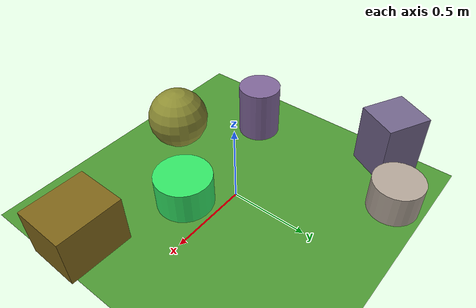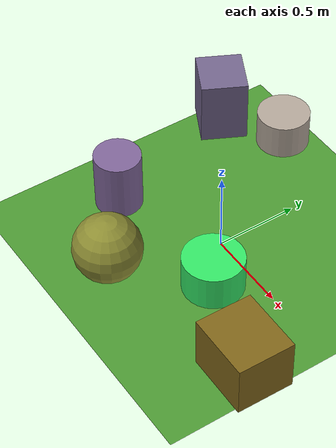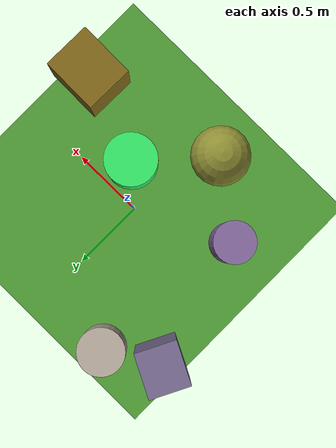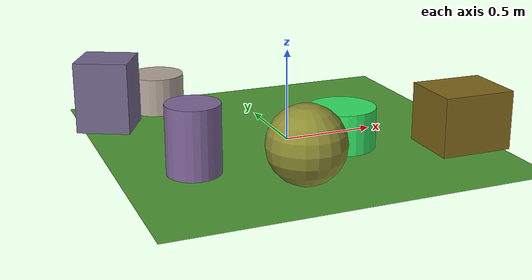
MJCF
<mujoco>
   <asset>
<texture type="skybox" builtin="gradient" rgb1="0.5 0.6 0.5" rgb2="0.9 1.0 0.3" width="500" height="500"/>
<texture name="gradient_0" builtin="gradient" rgb1="0.6 0.5 0.3" rgb2="0.5 0.6 0.1" width="500" height="500"/>
<texture name="checker_1" builtin="checker" rgb1="0.7 0.7 0.2" rgb2="0.2 0.1 0.9" width="500" height="500"/>
<texture name="flat_2" builtin="flat" rgb1="0.5 0.4 0.1" rgb2="0.5 0.4 0.1"  width="500" height="500"/>
<texture name="flat_3" builtin="flat" rgb1="0.2 0.9 0.4" rgb2="0.2 0.9 0.4"  width="500" height="500"/>
<texture name="gradient_4" builtin="gradient" rgb1="0.1 0.6 0.3" rgb2="0.9 0.2 0.9" width="500" height="500"/>
<texture name="gradient_5" builtin="gradient" rgb1="0.9 0.6 0.6" rgb2="0.5 0.7 0.6" width="500" height="500"/><material name="gradient_0_mat" reflectance="0.7502455767361746" texture="gradient_0" texuniform="true"/>
<material name="checker_1_mat" reflectance="0.869573529556625" texrepeat="5 5" texture="checker_1" texuniform="false" />
<material name="flat_2_mat" reflectance="0.48462778600114753" texture="flat_2" texuniform="true"/>
<material name="flat_3_mat" reflectance="0.7899636118061933" texture="flat_3" texuniform="true"/>
<material name="gradient_4_mat" reflectance="0.559624786724186" texture="gradient_4" texuniform="true"/>
<material name="gradient_5_mat" reflectance="0.2662393374375618" texture="gradient_5" texuniform="true"/>
   </asset>

   <worldbody>
     <geom type="plane" size="1 1 0.1" rgba="0.3 0.6 0.2 1" />
<light pos="-0.7209157155323049 0.19455808505148942 2" dir="0 0 -1" cutoff="90" diffuse="1 1 1" specular="1 1 1"/>
<light pos="-0.8795198059112732 -0.2813051589568065 2" dir="0 0 -1" cutoff="90" diffuse="1 1 1" specular="1 1 1"/>
<geom type="sphere" pos="-0.17 -0.64 0.2" size="0.2 0.2 0.2" material="gradient_0_mat" euler="0 0 65" />
<geom type="box" pos="-0.85 0.59 0.2" size="0.14 0.15 0.2" material="checker_1_mat" euler="0 0 63" />
<geom type="box" pos="0.83 -0.43 0.16" size="0.17 0.2 0.16" material="flat_2_mat" euler="0 0 89" />
<geom type="cylinder" pos="0.23 -0.21 0.11" size="0.18 0.11 0.11" material="flat_3_mat" euler="0 0 88" />
<geom type="cylinder" pos="-0.62 -0.29 0.18" size="0.14 0.18 0.18" material="gradient_4_mat" euler="0 0 72" />
<geom type="cylinder" pos="-0.51 0.81 0.11" size="0.16 0.11 0.11" material="gradient_5_mat" euler="0 0 89" /><camera euler="60 0 180" fovy="60" name="camera1" pos="-0.2 -1.5 1"></camera>   </worldbody>
   <visual>
      <headlight diffuse="0.7 0.7 0.7"/>
   </visual>
</mujoco>
